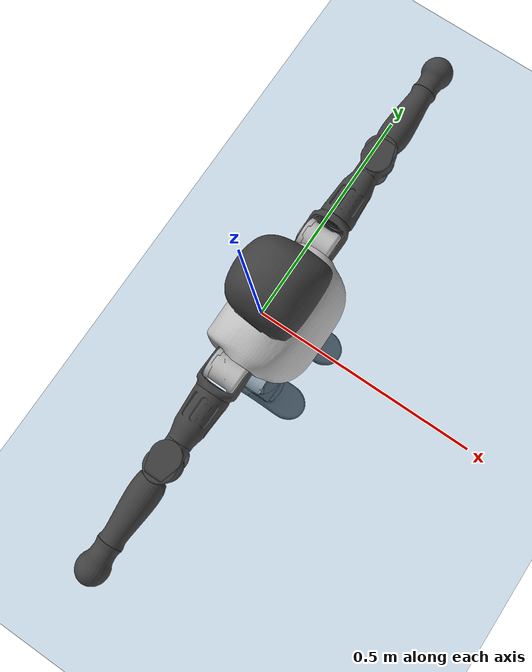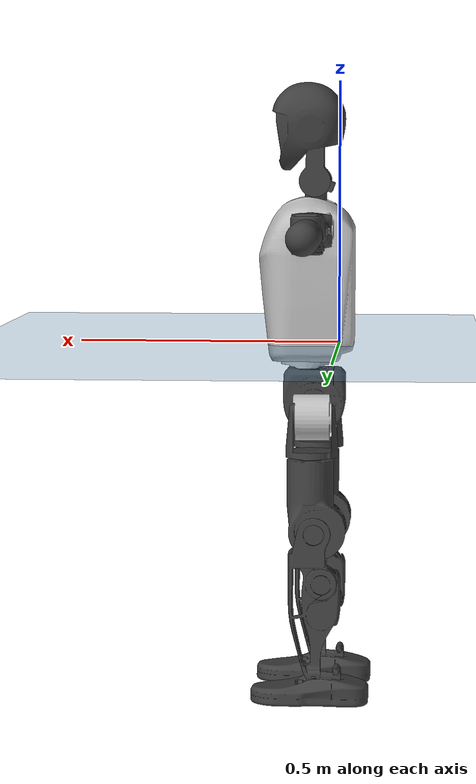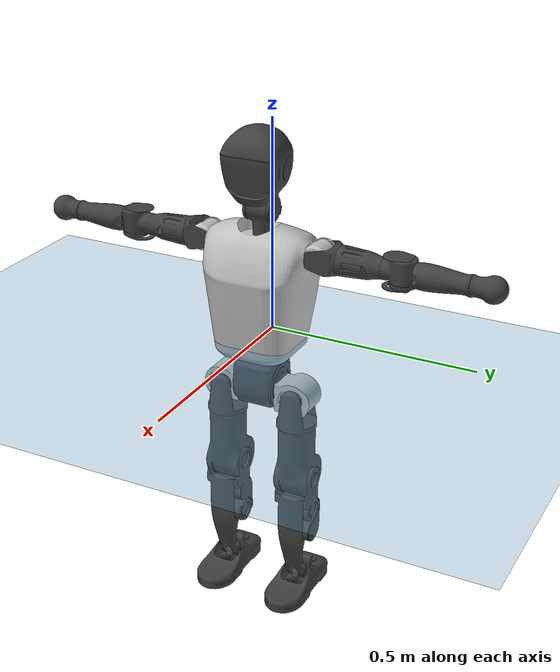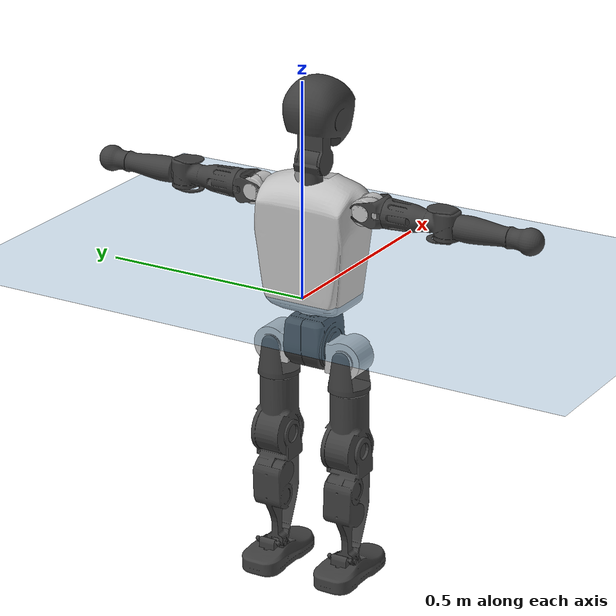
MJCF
<mujoco model="T1">
  <compiler angle="radian" assetdir="assets" balanceinertia="true" inertiafromgeom="false"/>

  <option timestep="0.005" density="1.2" viscosity="2e-05"/>

  <size nkey="1"/>

  <visual>
    <quality shadowsize="8192"/>
    <map shadowclip="0.5"/>
  </visual>

  <default>
    <default class="/">
      <joint armature="0.01" damping="0.01" frictionloss="0.1"/>
      <geom contype="0" conaffinity="0" group="1" solref="-1000 -80"/>
      <site size="0.01 0.005 0.005" group="5"/>
      <general forcelimited="true" biastype="affine" gainprm="25" biasprm="0 -25 -0.6"/>
      <default class="t1">
        <geom rgba="0.25 0.25 0.25 1"/>
        <default class="visual">
          <geom type="mesh" group="2"/>
        </default>
        <default class="collision">
          <geom group="3"/>
        </default>
        <default class="foot">
          <geom size="0.1115 0.05 0.015" type="box" condim="6" group="4" priority="1" solimp="0.015 1 0.015"/>
        </default>
        <default class="reward_collision_sphere">
          <geom group="5" rgba="1 0 0 1"/>
        </default>
      </default>
    </default>
  </default>

  <asset>
    <texture type="skybox" colorspace="auto" name="//unnamed_texture_0" builtin="gradient" rgb1="0.95 0.95 0.95" rgb2="0.95 0.95 0.95" width="100" height="600"/>
    <texture type="2d" colorspace="auto" name="texplane" builtin="checker" rgb1="0.345 0.575 0.748" rgb2="0.345 0.575 0.748" markrgb="1 1 1" width="512" height="512"/>
    <material name="MatPlane" class="/" texture="texplane" texuniform="true" texrepeat="2 2" specular="0.9"/>
    <mesh name="Trunk" class="/" file="Trunk.stl"/>
    <mesh name="H1" class="/" file="H1.stl"/>
    <mesh name="H2" class="/" file="H2.stl"/>
    <mesh name="AL1" class="/" file="AL1.stl"/>
    <mesh name="AL2" class="/" file="AL2.stl"/>
    <mesh name="AL3" class="/" file="AL3.stl"/>
    <mesh name="left_hand_link" class="/" file="left_hand_link.stl"/>
    <mesh name="AR1" class="/" file="AR1.stl"/>
    <mesh name="AR2" class="/" file="AR2.stl"/>
    <mesh name="AR3" class="/" file="AR3.stl"/>
    <mesh name="right_hand_link" class="/" file="right_hand_link.stl"/>
    <mesh name="Waist" class="/" file="Waist.stl"/>
    <mesh name="Hip_Pitch_Left" class="/" file="Hip_Pitch_Left.stl"/>
    <mesh name="Hip_Roll_Left" class="/" file="Hip_Roll_Left.stl"/>
    <mesh name="Hip_Yaw_Left" class="/" file="Hip_Yaw_Left.stl"/>
    <mesh name="Shank_Left" class="/" file="Shank_Left.stl"/>
    <mesh name="Ankle_Cross_Left" class="/" file="Ankle_Cross_Left.stl"/>
    <mesh name="left_foot_link" class="/" file="left_foot_link.stl"/>
    <mesh name="Hip_Pitch_Right" class="/" file="Hip_Pitch_Right.stl"/>
    <mesh name="Hip_Roll_Right" class="/" file="Hip_Roll_Right.stl"/>
    <mesh name="Hip_Yaw_Right" class="/" file="Hip_Yaw_Right.stl"/>
    <mesh name="Shank_Right" class="/" file="Shank_Right.stl"/>
    <mesh name="Ankle_Cross_Right" class="/" file="Ankle_Cross_Right.stl"/>
    <mesh name="right_foot_link" class="/" file="right_foot_link.stl"/>
  </asset>

  <worldbody>
    <geom name="floor" class="/" size="100 100 0.125" type="plane" group="0" material="MatPlane"/>
    <light name="toplight_shadow" class="/" pos="0 0 5" dir="0.0990148 0.0990148 -0.990148" type="directional" ambient="0.04 0.04 0.04" diffuse="0.55 0.55 0.55" specular="0.12 0.12 0.12"/>
    <light name="toplight_fill" class="/" pos="0 0 5" dir="0.0990148 0.0990148 -0.990148" type="directional" castshadow="false" ambient="0.04 0.04 0.04" diffuse="0.3 0.3 0.3" specular="0.08 0.08 0.08"/>
    <body name="trunk" childclass="t1" pos="0.000454241 -0.0019385 0.000327228" quat="1 -0.000203493 0.000221694 -8.36302e-05">
      <inertial pos="0.0408225 0.000148823 0.10652" quat="0.99996 0.000690556 -0.00827588 0.00320863" mass="7.68796" diaginertia="0.0210768 0.0414561 0.0597626"/>
      <joint name="//unnamed_joint_0" type="free" armature="0" damping="0" frictionloss="0"/>
      <geom name="//unnamed_geom_1" class="visual" rgba="0.76 0.76 0.76 1" mesh="Trunk"/>
      <geom name="//unnamed_geom_2" class="collision" size="0.0660874 0.0881165 0.132175" pos="0.0448645 0 0.121847" type="box"/>
      <geom name="//unnamed_geom_3" class="reward_collision_sphere" size="0.101334" pos="0.0448645 0 0.101539"/>
      <geom name="//unnamed_geom_4" class="reward_collision_sphere" size="0.0132175" pos="0.0448645 0.0748311 0"/>
      <geom name="//unnamed_geom_5" class="reward_collision_sphere" size="0.0132175" pos="0.0448645 -0.0748311 0"/>
      <geom name="//unnamed_geom_6" class="reward_collision_sphere" size="0.0132175" pos="0.0448645 0.0941991 0.18277"/>
      <geom name="//unnamed_geom_7" class="reward_collision_sphere" size="0.0132175" pos="0.0448645 -0.0941991 0.18277"/>
      <site name="imu" pos="-0.00478447 -0.0119512 0.0027158" size="0.00881165"/>
      <camera name="track" pos="0 -1.76073 0" quat="0.707107 0.707107 0 0" mode="trackcom"/>
      <camera name="ego_camera" pos="0.0912244 0 0.426463" quat="-0.5 -0.5 0.5 0.5"/>
      <body name="H1" pos="0.0456893 0.000202955 0.246662" quat="1 6.02149e-07 -3.14123e-05 5.82461e-05">
        <inertial pos="-0.00122074 -0.00110943 0.0589961" quat="0.770147 -0.0158171 0.0101229 0.63759" mass="0.298186" diaginertia="5.52733e-05 0.00011869 0.000158523"/>
        <joint name="AAHead_yaw" pos="0 0 0" axis="0.010591 0.00520574 0.99993" stiffness="0.00256471" range="-1.59128 1.55794" armature="0.00901611" damping="0.0105812" frictionloss="0.0818773"/>
        <geom name="//unnamed_geom_8" class="visual" mesh="H1"/>
        <body name="H2" pos="0.00146002 0.000516707 0.0626413" quat="1 1.84238e-05 8.60261e-06 -1.92013e-05">
          <inertial pos="0.00547802 -0.00181484 0.100517" quat="0.988459 0.104314 -0.0784312 -0.0769201" mass="0.421997" diaginertia="0.000468365 0.000962222 0.00181797"/>
          <joint name="Head_pitch" pos="0 0 0" axis="0.00197666 -0.999952 0.00956537" range="-1.2084 0.353211" armature="0.00843716" damping="0.00650253" frictionloss="0.0910217"/>
          <geom name="//unnamed_geom_9" class="visual" mesh="H2"/>
          <geom name="//unnamed_geom_10" class="collision" size="0.0704932" pos="0.00747741 0 0.111693"/>
          <geom name="//unnamed_geom_11" class="reward_collision_sphere" size="0.0793048" pos="0.0149548 0 0.101539"/>
        </body>
      </body>
      <body name="AL1" pos="0.0451856 0.0943599 0.22176" quat="1 -0.000217866 0.000879941 2.60179e-05">
        <inertial pos="-0.0009171 0.0383905 -0.0026295" quat="0.513983 0.490877 -0.505358 0.489362" mass="0.37393" diaginertia="0.000328124 0.000703772 0.000329015"/>
        <joint name="Left_Shoulder_Pitch" pos="0 0 0" axis="-0.0110277 0.999919 0.00642152" range="-3.31033 1.23105" armature="0.00928995" damping="0.0108942" frictionloss="0.0865501"/>
        <geom name="//unnamed_geom_12" class="visual" rgba="0.76 0.76 0.76 1" mesh="AL1"/>
        <body name="AL2" pos="0.00154582 0.040835 -0.0018688" quat="0.999999 0.000698943 -0.000908777 0.000188114">
          <inertial pos="0.00338464 0.0306806 -3.14639e-05" quat="0.487991 0.511723 -0.487989 0.511733" mass="0.107495" diaginertia="9.44275e-05 0.000180723 0.000187505"/>
          <joint name="Left_Shoulder_Roll" pos="0 0 0" axis="-0.999909 -0.0134361 0.00152527" range="-1.52264 1.75987" armature="0.00905486" damping="0" frictionloss="0.0987799"/>
          <geom name="//unnamed_geom_13" class="visual" mesh="AL2"/>
          <body name="AL3" pos="0.00230652 0.056278 0.00116497" quat="0.999999 -2.41115e-05 -0.0010127 0.000479661">
            <inertial pos="-0.000189231 0.0729887 0.000515214" quat="0.707992 0.706219 -0.0013229 0.000384776" mass="0.71901" diaginertia="0.00301103 0.00693832 0.000646492"/>
            <joint name="Left_Elbow_Pitch" pos="0 0 0" axis="0.00828337 -0.999956 0.00442338" range="-2.22045 2.21594" armature="0.00995702" damping="0" frictionloss="0.0955628"/>
            <geom name="//unnamed_geom_14" class="visual" mesh="AL3"/>
            <geom name="//unnamed_geom_15" class="collision" size="0.0264349 0.0660874" pos="0 0.0440183 0" quat="0.707105 0.707108 0 0" type="cylinder"/>
            <geom name="//unnamed_geom_16" class="reward_collision_sphere" size="0.0317219"/>
            <body name="left_hand_link" pos="0.000917086 0.129983 -0.0014645" quat="1 0.00019383 -2.26235e-05 -0.000550932">
              <inertial pos="-0.000209284 0.0966519 -0.00147165" quat="0.707936 0.706276 0.00116472 -0.000246627" mass="0.22466" diaginertia="0.00190158 0.00432219 0.000228638"/>
              <joint name="Left_Elbow_Yaw" pos="0 0 0" axis="0.00760052 0.00504338 0.999958" stiffness="0.00222436" range="-2.44294 0.00905128" armature="0.00931485" damping="0.0126587" frictionloss="0.0908306"/>
              <geom name="//unnamed_geom_17" class="visual" mesh="left_hand_link"/>
              <geom name="//unnamed_geom_18" class="collision" size="0.0264349 0.0771019" pos="0 0.114448 0" quat="0.707105 0.707108 0 0" type="cylinder"/>
              <geom name="//unnamed_geom_19" class="reward_collision_sphere" size="0.0440582"/>
              <geom name="//unnamed_geom_20" class="reward_collision_sphere" size="0.0308408" pos="0 0.0968402 0"/>
              <geom name="//unnamed_geom_21" class="reward_collision_sphere" size="0.0308408" pos="0 0.189279 0"/>
            </body>
          </body>
        </body>
      </body>
      <body name="AR1" pos="0.0432296 -0.0935863 0.221951" quat="1 0.000124801 0.000465675 0.000110167">
        <inertial pos="-0.000112663 -0.0422016 0.00239445" quat="0.504476 0.494297 -0.503387 0.497771" mass="0.362298" diaginertia="0.000308485 0.000678348 0.000318688"/>
        <joint name="Right_Shoulder_Pitch" pos="0 0 0" axis="-0.0034686 -0.999991 -0.00226172" range="-1.20539 3.31118" armature="0.00847509" damping="0.00142625" frictionloss="0.0838281"/>
        <geom name="//unnamed_geom_22" class="visual" rgba="0.76 0.76 0.76 1" mesh="AR1"/>
        <body name="AR2" pos="0.000272331 -0.0382323 -1.36417e-05" quat="1 -0.000108163 0.000341164 8.62691e-05">
          <inertial pos="0.00344496 -0.0333878 -0.0022772" quat="0.513375 0.488444 -0.51095 0.486619" mass="0.108385" diaginertia="9.10523e-05 0.000174473 0.000182909"/>
          <joint name="Right_Shoulder_Roll" pos="0 0 0" axis="-0.999943 0.010656 0.000150381" stiffness="0.0106221" range="-1.71912 1.61882" armature="0.00887973" damping="0" frictionloss="0.088765"/>
          <geom name="//unnamed_geom_23" class="visual" mesh="AR2"/>
          <body name="AR3" pos="0.00107942 -0.0537094 -0.000997681" quat="1 -0.000157779 -0.00011539 -5.37841e-05">
            <inertial pos="-0.00106183 -0.07559 0.000523037" quat="0.706716 0.707497 -0.000557464 -0.00019292" mass="0.694371" diaginertia="0.0029898 0.00682047 0.000667002"/>
            <joint name="Right_Elbow_Pitch" pos="0 0 0" axis="-0.000687274 0.999992 -0.00389433" range="-2.26857 2.26471" armature="0.00992025" damping="0.00997722" frictionloss="0.0772417"/>
            <geom name="//unnamed_geom_24" class="visual" mesh="AR3"/>
            <geom name="//unnamed_geom_25" class="collision" size="0.0264349 0.0660874" pos="0 -0.0440183 0" quat="0.707105 0.707108 0 0" type="cylinder"/>
            <geom name="//unnamed_geom_26" class="reward_collision_sphere" size="0.0317219"/>
            <body name="right_hand_link" pos="-0.000321484 -0.129401 -0.000409023" quat="1 0.00053465 6.43302e-05 8.70176e-05">
              <inertial pos="0.000625056 -0.0969231 -0.00185985" quat="0.706042 0.708049 -0.00605881 0.0115838" mass="0.231309" diaginertia="0.00184958 0.00429601 0.000234211"/>
              <joint name="Right_Elbow_Yaw" pos="0 0 0" axis="0.000502361 -0.000448209 1" range="-0.050641 2.49065" armature="0.00903846" damping="0.0121713" frictionloss="0.0835302"/>
              <geom name="//unnamed_geom_27" class="visual" mesh="right_hand_link"/>
              <geom name="//unnamed_geom_28" class="collision" size="0.0264349 0.0771019" pos="0 -0.114448 0" quat="0.707105 0.707108 0 0" type="cylinder"/>
              <geom name="//unnamed_geom_29" class="reward_collision_sphere" size="0.0440582"/>
              <geom name="//unnamed_geom_30" class="reward_collision_sphere" size="0.0308408" pos="0 -0.0968402 0"/>
              <geom name="//unnamed_geom_31" class="reward_collision_sphere" size="0.0308408" pos="0 -0.189279 0"/>
            </body>
          </body>
        </body>
      </body>
      <body name="Waist" pos="0.0468342 -0.00114923 -0.117647" quat="1 -3.24516e-05 -1.54025e-05 -2.15888e-06">
        <inertial pos="0.000184255 -0.000229502 0.007844" quat="0.983788 0.00161664 -0.179304 0.00292519" mass="1.74472" diaginertia="0.00122329 0.0027938 0.00513746"/>
        <joint name="Waist" pos="0 0 0" axis="-0.00521056 0.0116122 0.999919" range="-1.56979 1.56257" armature="0.00850388" damping="0.0226358" frictionloss="0.0786061"/>
        <geom name="//unnamed_geom_32" class="visual" mesh="Waist"/>
        <body name="Hip_Pitch_Left" pos="0.00211694 0.0950668 0.000307564" quat="1 -0.000108152 0.000200069 8.24615e-05">
          <inertial pos="0.00324256 -0.00677839 -0.0209658" quat="0.974508 0.222661 0.026722 0.00644531" mass="0.708586" diaginertia="0.000424157 0.000770739 0.00134099"/>
          <joint name="Left_Hip_Pitch" pos="0 0 0" axis="0.000139433 1 2.68223e-05" range="-1.79294 1.62063" armature="0.00870941" damping="0" frictionloss="0.0914807"/>
          <geom name="//unnamed_geom_33" class="visual" rgba="0.76 0.76 0.76 1" mesh="Hip_Pitch_Left"/>
          <body name="Hip_Roll_Left" pos="0.00211721 -0.00141902 -0.0183679" quat="1 -0.000251993 -0.000168986 2.03007e-05">
            <inertial pos="1.58882e-06 0.0020377 -0.054783" quat="0.705353 -0.00998037 -0.0115129 0.708692" mass="0.251716" diaginertia="0.000407087 0.00075836 0.000536324"/>
            <joint name="Left_Hip_Roll" pos="0 0 0" axis="-0.999989 0.000635951 -0.00456969" range="-1.57419 0.196716" armature="0.0090694" damping="0.00667771" frictionloss="0.0818211"/>
            <geom name="//unnamed_geom_34" class="visual" mesh="Hip_Roll_Left"/>
            <geom name="//unnamed_geom_35" class="reward_collision_sphere" size="0.0484641"/>
            <body name="Hip_Yaw_Left" pos="0.000646872 0.00107499 -0.0822063" quat="1 -0.000220221 7.46243e-05 -0.00026367">
              <inertial pos="-0.00478325 -0.000302787 -0.0904173" quat="0.692419 -0.0452312 -0.0345684 0.719247" mass="1.44494" diaginertia="0.00599025 0.0132506 0.00281967"/>
              <joint name="Left_Hip_Yaw" pos="0 0 0" axis="-0.00524526 0.00932382 -0.999943" range="-1.00678 0.970874" armature="0.00871374" damping="0.00406656" frictionloss="0.0891474"/>
              <geom name="//unnamed_geom_36" class="visual" mesh="Hip_Yaw_Left"/>
              <geom name="//unnamed_geom_37" class="collision" size="0.0440582 0.0704932" type="cylinder"/>
              <body name="Shank_Left" pos="-0.00807088 0.00199623 -0.139021" quat="1 4.52591e-05 -1.45874e-05 0.000139663">
                <inertial pos="-0.0054622 -0.00230555 -0.126256" quat="0.997595 0.00213127 -0.0225758 0.0654909" mass="1.17457" diaginertia="0.00832214 0.0182528 0.0020583"/>
                <joint name="Left_Knee_Pitch" pos="0 0 0" axis="-0.00590579 0.999976 -0.00373054" range="0.00355608 2.34458" armature="0.00844178" damping="0.0119737" frictionloss="0.0996785"/>
                <geom name="//unnamed_geom_38" class="visual" mesh="Shank_Left"/>
                <geom name="//unnamed_geom_39" class="collision" size="0.0440582 0.0660874" pos="0 0 -0.121847" type="cylinder"/>
                <geom name="//unnamed_geom_40" class="reward_collision_sphere" size="0.0572757"/>
                <body name="Ankle_Cross_Left" pos="-0.00125105 -0.00159185 -0.285949" quat="1 -5.58758e-05 2.26602e-05 5.43089e-05">
                  <inertial pos="-0.00309 -0.000279124 -0.00750411" quat="0.444204 0.55074 0.553001 0.439952" mass="0.0475163" diaginertia="6.70781e-06 1.26904e-05 1.18719e-05"/>
                  <joint name="Left_Ankle_Pitch" pos="0 0 0" axis="-0.00798807 0.99989 -0.0124581" range="-0.85693 0.370701" armature="0.00882496" damping="0.00666332" frictionloss="0.0882071"/>
                  <geom name="//unnamed_geom_41" class="visual" mesh="Ankle_Cross_Left"/>
                  <body name="left_foot_link" pos="-0.000421915 0.000348699 -0.0124174" quat="0.999999 0.000245899 -9.47067e-05 -0.00135018">
                    <inertial pos="0.00239768 0.000567333 -0.00866076" quat="0.00588772 0.615794 -0.00515828 0.787869" mass="0.466764" diaginertia="0.000627369 0.00125822 0.00230594"/>
                    <joint name="Left_Ankle_Roll" pos="0 0 0" axis="-0.999993 0.00144926 -0.00342561" stiffness="0.000544831" range="-0.436015 0.432484" armature="0.00874947" damping="0" frictionloss="0.0850624"/>
                    <geom name="//unnamed_geom_42" class="visual" mesh="left_foot_link"/>
                    <geom name="left_foot" class="foot" size="0.106275 0.0415222 0.0120481" pos="0.00747741 0 -0.0152308"/>
                    <geom name="//unnamed_geom_44" class="reward_collision_sphere" size="0.0458206" pos="0.00747741 0 -0.0152308"/>
                    <geom name="//unnamed_geom_45" class="reward_collision_sphere" size="0.0264349" pos="0.0710354 -0.0202484 -0.0152308"/>
                    <geom name="//unnamed_geom_46" class="reward_collision_sphere" size="0.0264349" pos="-0.0523419 -0.0202484 -0.0152308"/>
                    <site name="left_foot" class="foot" pos="0.00747741 0 -0.0152308" size="0.00881165"/>
                  </body>
                </body>
              </body>
            </body>
          </body>
        </body>
        <body name="Hip_Pitch_Right" pos="-0.00248092 -0.0936748 0.000971478" quat="1 -9.26277e-05 -0.00062312 -0.000759374">
          <inertial pos="-0.000197937 0.00772375 -0.01608" quat="0.97328 -0.229172 0.0142506 -0.00190889" mass="0.716282" diaginertia="0.000427193 0.000784287 0.00138165"/>
          <joint name="Right_Hip_Pitch" pos="0 0 0" axis="-0.0040685 -0.99999 -0.00191259" stiffness="0.00196245" range="-1.57388 1.79432" armature="0.00865794" damping="0" frictionloss="0.0947883"/>
          <geom name="//unnamed_geom_47" class="visual" rgba="0.76 0.76 0.76 1" mesh="Hip_Pitch_Right"/>
          <body name="Hip_Roll_Right" pos="0.00197486 0.00120294 -0.0201117" quat="1 -8.11755e-05 -6.17514e-05 -0.000171987">
            <inertial pos="-0.00114606 -0.000565795 -0.0563275" quat="0.70648 -0.00541902 -0.00596382 0.707687" mass="0.269075" diaginertia="0.000405298 0.000797049 0.000555127"/>
            <joint name="Right_Hip_Roll" pos="0 0 0" axis="-0.999985 0.00457657 0.003012" stiffness="0.00227272" range="-0.2176 1.58881" armature="0.0089457" damping="0.004379" frictionloss="0.0869636"/>
            <geom name="//unnamed_geom_48" class="visual" mesh="Hip_Roll_Right"/>
            <geom name="//unnamed_geom_49" class="reward_collision_sphere" size="0.0484641"/>
            <body name="Hip_Yaw_Right" pos="-0.00018936 -0.00014294 -0.0828129" quat="1 0.000109051 0.000157683 -0.000320594">
              <inertial pos="-0.00495947 -0.00274057 -0.0881261" quat="0.716564 -0.0294381 -0.0358623 0.695977" mass="1.5315" diaginertia="0.00604145 0.0140633 0.00280096"/>
              <joint name="Right_Hip_Yaw" pos="0 0 0" axis="0.00124284 0.000495838 -0.999999" stiffness="0.0104276" range="-0.985943 0.998682" armature="0.0076466" damping="0.000791628" frictionloss="0.0919416"/>
              <geom name="//unnamed_geom_50" class="visual" mesh="Hip_Yaw_Right"/>
              <geom name="//unnamed_geom_51" class="collision" size="0.0440582 0.0704932" type="cylinder"/>
              <body name="Shank_Right" pos="-0.00779138 -0.000765258 -0.135991" quat="1 5.86001e-06 -8.62223e-06 1.45666e-05">
                <inertial pos="-0.00188624 0.00232088 -0.125414" quat="0.999447 -0.00337591 -0.0161437 -0.0288716" mass="1.26382" diaginertia="0.00876981 0.0192624 0.00217792"/>
                <joint name="Right_Knee_Pitch" pos="0 0 0" axis="0.00518215 -0.999985 -0.00178167" range="-2.34073 -0.00738253" armature="0.00833732" damping="0.00361495" frictionloss="0.0880797"/>
                <geom name="//unnamed_geom_52" class="visual" mesh="Shank_Right"/>
                <geom name="//unnamed_geom_53" class="collision" size="0.0440582 0.0660874" pos="0 0 -0.121847" type="cylinder"/>
                <geom name="//unnamed_geom_54" class="reward_collision_sphere" size="0.0572757"/>
                <body name="Ankle_Cross_Right" pos="0.00124556 -0.0013148 -0.28417" quat="1 -6.00364e-05 0.000329556 0.000340442">
                  <inertial pos="-0.00366162 0.000873179 -0.00778375" quat="0.443116 0.550719 0.551796 0.442582" mass="0.048874" diaginertia="6.91915e-06 1.35405e-05 1.21533e-05"/>
                  <joint name="Right_Ankle_Pitch" pos="0 0 0" axis="0.0131351 -0.999894 -0.0062891" range="-0.333823 0.878277" armature="0.00847082" damping="0.0026687" frictionloss="0.0838132"/>
                  <geom name="//unnamed_geom_55" class="visual" mesh="Ankle_Cross_Right"/>
                  <body name="right_foot_link" pos="0.000541427 -0.00309486 -0.0103486" quat="1 0.000263897 1.86439e-05 -0.000143182">
                    <inertial pos="0.00259718 4.34224e-06 -0.00817372" quat="0.00464887 0.626343 0.00188059 0.779531" mass="0.469345" diaginertia="0.000650243 0.00125168 0.00235335"/>
                    <joint name="Right_Ankle_Roll" pos="0 0 0" axis="-0.999927 0.00986409 -0.00695755" range="-0.442305 0.452449" armature="0.00852504" damping="0.00372692" frictionloss="0.0769192"/>
                    <geom name="//unnamed_geom_56" class="visual" mesh="right_foot_link"/>
                    <geom name="right_foot" class="foot" size="0.100408 0.0414914 0.0127764" pos="0.00747741 0 -0.0152308"/>
                    <geom name="//unnamed_geom_58" class="reward_collision_sphere" size="0.0352466"/>
                    <geom name="//unnamed_geom_59" class="reward_collision_sphere" size="0.0264349" pos="0.00747741 0 -0.0152308"/>
                    <geom name="//unnamed_geom_60" class="reward_collision_sphere" size="0.0264349" pos="0.0710354 0.0202484 -0.0152308"/>
                    <geom name="//unnamed_geom_61" class="reward_collision_sphere" size="0.0264349" pos="-0.0523419 0.0202484 -0.0152308"/>
                    <site name="right_foot" class="foot" pos="0.00747741 0 -0.0152308" size="0.00881165"/>
                  </body>
                </body>
              </body>
            </body>
          </body>
        </body>
      </body>
    </body>
  </worldbody>

  <contact>
    <pair class="/" geom1="floor" geom2="left_foot" name="//unnamed_contact_0"/>
    <pair class="/" geom1="floor" geom2="right_foot" name="//unnamed_contact_1"/>
  </contact>

  <actuator>
    <general name="AAHead_yaw" class="/" joint="AAHead_yaw" forcerange="-5.62955 5.62955" gainprm="22.5579" biasprm="0 -22.5579 -0.502063"/>
    <general name="Head_pitch" class="/" joint="Head_pitch" forcerange="-6.01009 6.01009" gainprm="22.5579" biasprm="0 -22.5579 -0.502063"/>
    <general name="Left_Shoulder_Pitch" class="/" joint="Left_Shoulder_Pitch" forcerange="-15.9131 15.9131" gainprm="22.5579" biasprm="0 -22.5579 -0.502063"/>
    <general name="Left_Shoulder_Roll" class="/" joint="Left_Shoulder_Roll" forcerange="-15.3582 15.3582" gainprm="22.5579" biasprm="0 -22.5579 -0.502063"/>
    <general name="Left_Elbow_Pitch" class="/" joint="Left_Elbow_Pitch" forcerange="-17.0163 17.0163" gainprm="22.5579" biasprm="0 -22.5579 -0.502063"/>
    <general name="Left_Elbow_Yaw" class="/" joint="Left_Elbow_Yaw" forcerange="-17.5338 17.5338" gainprm="22.5579" biasprm="0 -22.5579 -0.502063"/>
    <general name="Right_Shoulder_Pitch" class="/" joint="Right_Shoulder_Pitch" forcerange="-16.0188 16.0188" gainprm="22.5579" biasprm="0 -22.5579 -0.502063"/>
    <general name="Right_Shoulder_Roll" class="/" joint="Right_Shoulder_Roll" forcerange="-16.9664 16.9664" gainprm="22.5579" biasprm="0 -22.5579 -0.502063"/>
    <general name="Right_Elbow_Pitch" class="/" joint="Right_Elbow_Pitch" forcerange="-16.434 16.434" gainprm="22.5579" biasprm="0 -22.5579 -0.502063"/>
    <general name="Right_Elbow_Yaw" class="/" joint="Right_Elbow_Yaw" forcerange="-14.7451 14.7451" gainprm="22.5579" biasprm="0 -22.5579 -0.502063"/>
    <general name="Waist" class="/" joint="Waist" forcerange="-26.4876 26.4876" gainprm="22.5579" biasprm="0 -22.5579 -0.502063"/>
    <general name="Left_Hip_Pitch" class="/" joint="Left_Hip_Pitch" forcerange="-40.6732 40.6732" gainprm="22.5579" biasprm="0 -22.5579 -0.502063"/>
    <general name="Left_Hip_Roll" class="/" joint="Left_Hip_Roll" forcerange="-26.8096 26.8096" gainprm="22.5579" biasprm="0 -22.5579 -0.502063"/>
    <general name="Left_Hip_Yaw" class="/" joint="Left_Hip_Yaw" forcerange="-25.5443 25.5443" gainprm="22.5579" biasprm="0 -22.5579 -0.502063"/>
    <general name="Left_Knee_Pitch" class="/" joint="Left_Knee_Pitch" forcerange="-52.7351 52.7351" gainprm="22.5579" biasprm="0 -22.5579 -0.502063"/>
    <general name="Left_Ankle_Pitch" class="/" joint="Left_Ankle_Pitch" forcerange="-16.9202 16.9202" gainprm="22.5579" biasprm="0 -22.5579 -0.502063"/>
    <general name="Left_Ankle_Roll" class="/" joint="Left_Ankle_Roll" forcerange="-13.2699 13.2699" gainprm="22.5579" biasprm="0 -22.5579 -0.502063"/>
    <general name="Right_Hip_Pitch" class="/" joint="Right_Hip_Pitch" forcerange="-38.8815 38.8815" gainprm="22.5579" biasprm="0 -22.5579 -0.502063"/>
    <general name="Right_Hip_Roll" class="/" joint="Right_Hip_Roll" forcerange="-26.5593 26.5593" gainprm="22.5579" biasprm="0 -22.5579 -0.502063"/>
    <general name="Right_Hip_Yaw" class="/" joint="Right_Hip_Yaw" forcerange="-27.0744 27.0744" gainprm="22.5579" biasprm="0 -22.5579 -0.502063"/>
    <general name="Right_Knee_Pitch" class="/" joint="Right_Knee_Pitch" forcerange="-52.4314 52.4314" gainprm="22.5579" biasprm="0 -22.5579 -0.502063"/>
    <general name="Right_Ankle_Pitch" class="/" joint="Right_Ankle_Pitch" forcerange="-16.4729 16.4729" gainprm="22.5579" biasprm="0 -22.5579 -0.502063"/>
    <general name="Right_Ankle_Roll" class="/" joint="Right_Ankle_Roll" forcerange="-13.5919 13.5919" gainprm="22.5579" biasprm="0 -22.5579 -0.502063"/>
  </actuator>

  <sensor>
    <gyro site="imu" name="imu_angular_velocity"/>
    <velocimeter site="imu" name="imu_linear_velocity"/>
    <framelinvel objtype="site" objname="left_foot" name="left_foot_global_linear_velocity"/>
    <framelinvel objtype="site" objname="right_foot" name="right_foot_global_linear_velocity"/>
  </sensor>

  <keyframe>
    <key name="home" qpos="0 0 0.6385 1 0 0 0 0 0 0 1.4 0 -0.4 0 -1.4 0 0.4 0 -0.4 0 0 0.8 -0.4 0 0.4 0 0 -0.8 0.4 0"/>
  </keyframe>
</mujoco>
